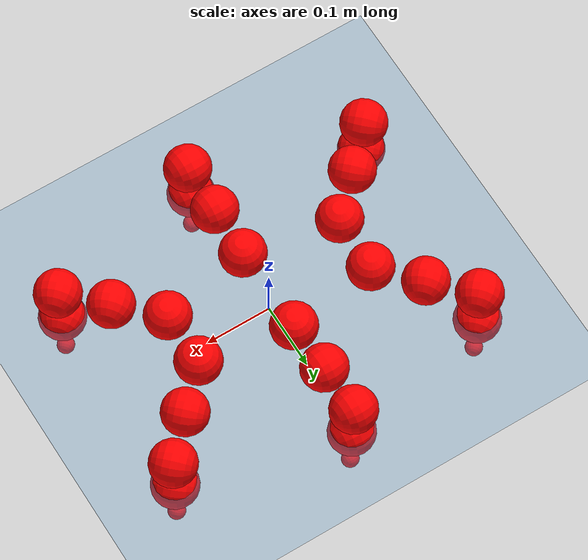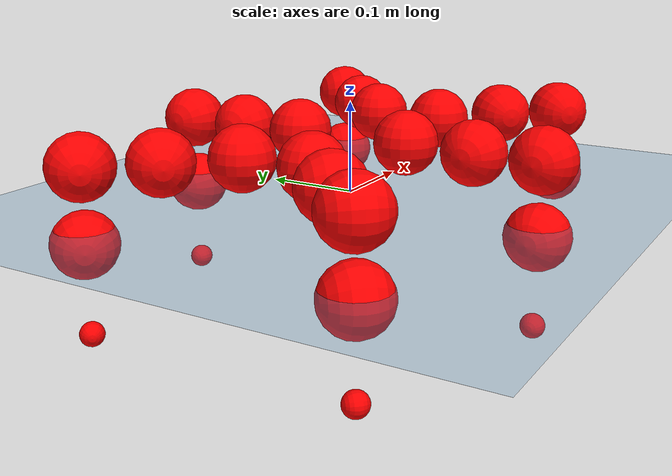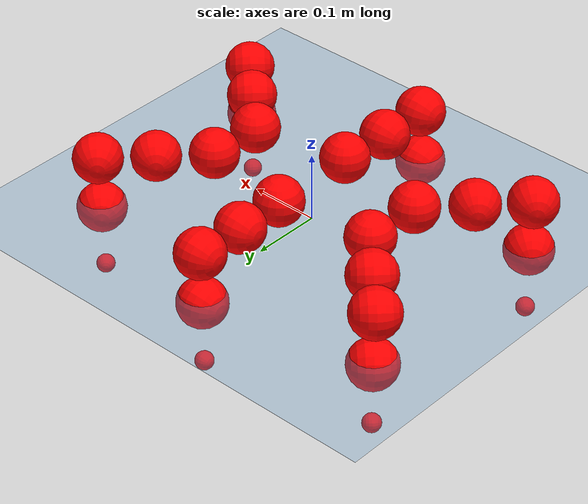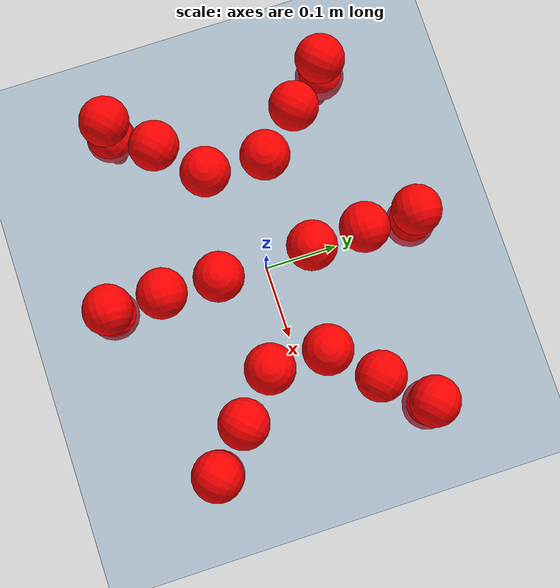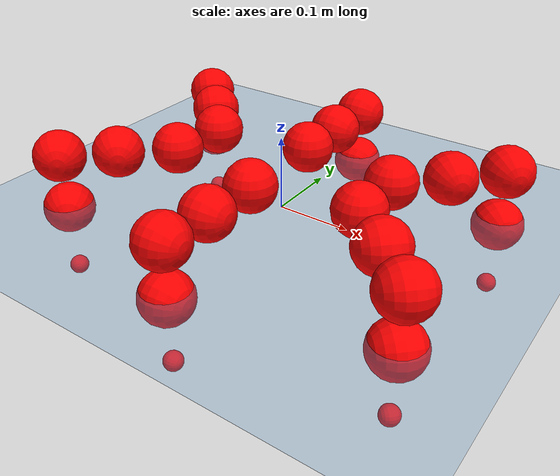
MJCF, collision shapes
<mujoco model="Golem">
  <compiler angle="radian" assetdir="assets" balanceinertia="true" inertiafromgeom="false"/>

  <option timestep="0.005" density="1.2" viscosity="2e-05"/>

  <size nkey="1"/>

  <visual>
    <quality shadowsize="8192"/>
    <map shadowclip="0.5"/>
  </visual>

  <default>
    <default class="/">
      <joint armature="0.01" damping="0.01" frictionloss="0.01"/>
      <geom contype="0" conaffinity="0" group="1" solref="-1000 -80"/>
      <site size="0.01 0.005 0.005" group="5"/>
      <general forcelimited="true" biastype="affine" gainprm="25" biasprm="0 -25 -0.5"/>
      <default class="visual">
        <geom type="mesh" group="2"/>
      </default>
      <default class="collision">
        <geom group="3"/>
      </default>
      <default class="foot">
        <geom size="0.01 0 0" condim="6" group="4" priority="1" solimp="0.015 1 0.01"/>
      </default>
      <default class="reward_collision_sphere">
        <geom group="5" rgba="1 0 0 1"/>
      </default>
    </default>
  </default>

  <asset>
    <texture type="skybox" colorspace="auto" name="//unnamed_texture_0" builtin="gradient" rgb1="0.95 0.95 0.95" rgb2="0.95 0.95 0.95" width="100" height="600"/>
    <texture type="2d" colorspace="auto" name="texplane" builtin="checker" rgb1="0.345 0.575 0.748" rgb2="0.345 0.575 0.748" markrgb="1 1 1" width="512" height="512"/>
    <material name="MatPlane" class="/" texture="texplane" texuniform="true" texrepeat="2 2" specular="0.9"/>
    <mesh name="body" class="/" file="body.stl" scale="0.001 0.001 0.001"/>
    <mesh name="coxa" class="/" file="coxa.stl" scale="0.001 0.001 0.001"/>
    <mesh name="femur" class="/" file="femur.stl" scale="0.001 0.001 0.001"/>
    <mesh name="tibia" class="/" file="tibia.stl" scale="0.001 0.001 0.001"/>
    <mesh name="tarsus" class="/" file="tarsus.stl" scale="0.001 0.001 0.001"/>
  </asset>

  <worldbody>
    <geom name="floor" class="/" size="100 100 0.125" type="plane" group="0" material="MatPlane"/>
    <light name="toplight_shadow" class="/" pos="0 0 5" dir="0.0990148 0.0990148 -0.990148" type="directional" ambient="0.04 0.04 0.04" diffuse="0.55 0.55 0.55" specular="0.12 0.12 0.12"/>
    <light name="toplight_fill" class="/" pos="0 0 5" dir="0.0990148 0.0990148 -0.990148" type="directional" castshadow="false" ambient="0.04 0.04 0.04" diffuse="0.3 0.3 0.3" specular="0.08 0.08 0.08"/>
    <body name="trunk" pos="-0.000269115 -0.000116361 -0.0019537" quat="1 -0.000242973 9.50115e-05 -0.000186495">
      <inertial pos="-8.4917e-05 0.000697923 -0.00497915" quat="0.999991 -0.000189495 -0.00394034 0.00180917" mass="2.46173" diaginertia="0.00559403 0.00174642 0.0104556"/>
      <joint name="//unnamed_joint_0" type="free"/>
      <geom name="//unnamed_geom_1" class="/" pos="0 0 0.0644563" quat="1 0 0 0" type="mesh" rgba="0.9 0.9 0.9 1" mesh="body"/>
      <site name="imu" class="/" pos="0.11895 0.000380833 0.107991" size="0.00865242"/>
      <camera name="track" class="/" pos="0 -1.40439 0" quat="0.707107 0.707107 0 0" mode="trackcom"/>
      <camera name="ego_camera" class="/" pos="0.115232 0 0.100713" quat="-0.5 -0.5 0.5 0.5"/>
      <body name="coxa_RR" pos="-0.159258 -0.0598653 0.0659566" quat="0.383153 -0.000954603 0.00048269 -0.923684">
        <inertial pos="-0.00228105 -5.27208e-05 0.00110322" quat="0.999971 -0.00348951 -0.00675532 0.000576431" mass="0.128081" diaginertia="0.0054982 0.00171603 0.0100614"/>
        <joint name="coxa_joint_RR" class="/" pos="0 0 0" axis="3.40233e-05 -0.00029241 -1" range="-3.1258 3.13274" armature="0.00904129" damping="0.0100929" frictionloss="0.0093196"/>
        <geom name="//unnamed_geom_2" class="/" type="mesh" rgba="0.2 0.2 0.2 1" mesh="coxa"/>
        <geom name="//unnamed_geom_3" class="reward_collision_sphere" size="0.0346097" pos="-0.026592 0 0"/>
        <body name="femur_RR" pos="0.0517372 -0.000286248 0.000786263" quat="0.500208 -0.499929 0.499803 0.50006">
          <inertial pos="-0.000648513 0.000662644 0.00185797" quat="1 0.000169727 0.000279087 8.72093e-05" mass="0.130378" diaginertia="0.00549781 0.00171393 0.0101389"/>
          <joint name="femur_joint_RR" class="/" pos="0 0 0" axis="-0.00644003 -7.96445e-05 -0.999979" stiffness="0.0015978" range="-3.159 3.14465" armature="0.00889012" damping="0.00437485" frictionloss="0.0090922"/>
          <geom name="//unnamed_geom_4" class="/" type="mesh" rgba="0.9 0.9 0.9 1" mesh="femur"/>
          <geom name="//unnamed_geom_5" class="reward_collision_sphere" size="0.0346097"/>
          <body name="tibia_RR" pos="-0.000488416 -0.0757235 0.000645052" quat="1.91942e-06 1 9.88987e-06 -2.61132e-05">
            <inertial pos="0.000615353 0.00183462 -0.00194501" quat="0.999968 -0.000893657 -0.00194102 -0.00775069" mass="0.129497" diaginertia="0.00541008 0.00171772 0.0103775"/>
            <joint name="tibia_joint_RR" class="/" pos="0 0 0" axis="0.000835304 0.00109703 0.999999" range="-3.14068 3.12541" armature="0.008649" damping="0.00101773" frictionloss="0.00875047"/>
            <geom name="//unnamed_geom_6" class="/" type="mesh" rgba="0.2 0.2 0.2 1" mesh="tibia"/>
            <geom name="//unnamed_geom_7" class="reward_collision_sphere" size="0.0346097"/>
            <body name="tarsus_RR" pos="0.0765256 -0.0019898 -0.00176346" quat="1 0.00035112 0.000741485 0.000451989">
              <inertial pos="0.0513398 -0.00173871 -0.000798481" quat="0.499553 0.498274 0.500361 0.501804" mass="0.126274" diaginertia="0.00549497 0.00173142 0.0103576"/>
              <joint name="tarsus_joint_RR" class="/" pos="0 0 0" axis="0.00188248 -0.000817525 0.999998" range="-3.13987 3.12879" armature="0.00855802" damping="0" frictionloss="0.00870312"/>
              <geom name="//unnamed_geom_8" class="/" type="mesh" rgba="0.9 0.9 0.9 1" mesh="tarsus"/>
              <geom name="foot_1" class="foot" size="0.00850481" pos="0.0992768 0 0" quat="0 -0.707107 0 0.707107"/>
              <geom name="//unnamed_geom_10" class="reward_collision_sphere" size="0.0346097"/>
              <geom name="//unnamed_geom_11" class="reward_collision_sphere" size="0.0129786" pos="0.095288 0 0"/>
              <site name="foot_1" class="foot" pos="0.0992768 0 0" quat="0 -0.707107 0 0.707107" size="0.00865242"/>
            </body>
          </body>
        </body>
      </body>
      <body name="coxa_RM" pos="0.0013319 -0.0935534 0.06452" quat="0.707062 -0.000140243 -0.000234114 -0.707152">
        <inertial pos="0.000311751 5.0691e-06 -0.00204964" quat="0.999988 -0.00353805 -0.00123127 -0.0032218" mass="0.128704" diaginertia="0.00535255 0.00165485 0.0101318"/>
        <joint name="coxa_joint_RM" class="/" pos="0 0 0" axis="-8.05599e-05 -6.49178e-05 -1" range="-3.14093 3.13894" armature="0.00891509" damping="0.0117335" frictionloss="0.00871422"/>
        <geom name="//unnamed_geom_12" class="/" type="mesh" rgba="0.2 0.2 0.2 1" mesh="coxa"/>
        <geom name="//unnamed_geom_13" class="reward_collision_sphere" size="0.0346097" pos="-0.026592 0 0"/>
        <body name="femur_RM" pos="0.0520258 -0.00211286 -0.00124662" quat="0.499641 -0.499353 0.500216 0.50079">
          <inertial pos="0.000540422 -0.000409817 4.52192e-05" quat="0.999946 -0.00475513 -0.00746587 0.00542112" mass="0.128155" diaginertia="0.00559599 0.00172524 0.0103261"/>
          <joint name="femur_joint_RM" class="/" pos="0 0 0" axis="-0.00501323 -0.000358197 -0.999987" range="-3.16724 3.16717" armature="0.00959491" damping="0.0203601" frictionloss="0.00850333"/>
          <geom name="//unnamed_geom_14" class="/" type="mesh" rgba="0.9 0.9 0.9 1" mesh="femur"/>
          <geom name="//unnamed_geom_15" class="reward_collision_sphere" size="0.0346097"/>
          <body name="tibia_RM" pos="-0.00189766 -0.0741452 -0.000827254" quat="-6.26253e-05 1 7.03006e-05 4.42773e-05">
            <inertial pos="0.00105095 0.000261388 -0.00167001" quat="0.99998 -0.000770667 0.00172796 -0.0059762" mass="0.124407" diaginertia="0.00531089 0.00167598 0.0104101"/>
            <joint name="tibia_joint_RM" class="/" pos="0 0 0" axis="0.00332479 0.000506985 0.999994" range="-3.16488 3.11072" armature="0.00809271" damping="0" frictionloss="0.00909505"/>
            <geom name="//unnamed_geom_16" class="/" type="mesh" rgba="0.2 0.2 0.2 1" mesh="tibia"/>
            <geom name="//unnamed_geom_17" class="reward_collision_sphere" size="0.0346097"/>
            <body name="tarsus_RM" pos="0.0782506 -0.00109467 0.00283649" quat="1 0.000344436 9.41181e-05 0.000129624">
              <inertial pos="0.0541137 0.000111842 0.00111566" quat="0.502189 0.500135 0.500939 0.496721" mass="0.129382" diaginertia="0.0055037 0.00170376 0.0104325"/>
              <joint name="tarsus_joint_RM" class="/" pos="0 0 0" axis="-0.000480267 -0.000967242 0.999999" range="-3.12876 3.18694" armature="0.00873553" damping="0" frictionloss="0.00881306"/>
              <geom name="//unnamed_geom_18" class="/" type="mesh" rgba="0.9 0.9 0.9 1" mesh="tarsus"/>
              <geom name="foot_2" class="foot" size="0.00812259" pos="0.0992768 0 0" quat="0 -0.707107 0 0.707107"/>
              <geom name="//unnamed_geom_20" class="reward_collision_sphere" size="0.0346097"/>
              <geom name="//unnamed_geom_21" class="reward_collision_sphere" size="0.0129786" pos="0.095288 0 0"/>
              <site name="foot_2" class="foot" pos="0.0992768 0 0" quat="0 -0.707107 0 0.707107" size="0.00865242"/>
            </body>
          </body>
        </body>
      </body>
      <body name="coxa_RF" pos="0.157543 -0.0587366 0.064111" quat="0.924171 -0.000385399 0.000498419 -0.381978">
        <inertial pos="0.00196266 -0.00166003 0.000706131" quat="0.999994 -0.00035228 -0.00322434 0.00108903" mass="0.12954" diaginertia="0.00557717 0.00169577 0.0104255"/>
        <joint name="coxa_joint_RF" class="/" pos="0 0 0" axis="0.00443874 -0.000783671 -0.99999" stiffness="0.000474926" range="-3.14216 3.14186" armature="0.00877673" damping="0" frictionloss="0.00905807"/>
        <geom name="//unnamed_geom_22" class="/" type="mesh" rgba="0.2 0.2 0.2 1" mesh="coxa"/>
        <geom name="//unnamed_geom_23" class="reward_collision_sphere" size="0.0346097" pos="-0.026592 0 0"/>
        <body name="femur_RF" pos="0.0529846 0.00216317 0.00181032" quat="0.500108 -0.500819 0.499014 0.500058">
          <inertial pos="0.000245805 -0.000575571 0.000882857" quat="1 -0.00079556 -7.72538e-06 -0.000255352" mass="0.130644" diaginertia="0.0055141 0.00172761 0.0103836"/>
          <joint name="femur_joint_RF" class="/" pos="0 0 0" axis="0.00324742 -0.0041153 -0.999986" range="-3.15019 3.13267" armature="0.00859767" damping="0.0123809" frictionloss="0.00856876"/>
          <geom name="//unnamed_geom_24" class="/" type="mesh" rgba="0.9 0.9 0.9 1" mesh="femur"/>
          <geom name="//unnamed_geom_25" class="reward_collision_sphere" size="0.0346097"/>
          <body name="tibia_RF" pos="0.000695694 -0.0754348 0.000417214" quat="-0.000100484 1 3.95433e-05 0.000267536">
            <inertial pos="-0.000783965 -0.000995918 -0.000331417" quat="0.999991 0.00401255 -0.00163524 -0.000187883" mass="0.124493" diaginertia="0.00530901 0.00165084 0.0102956"/>
            <joint name="tibia_joint_RF" class="/" pos="0 0 0" axis="-0.00205148 0.00159432 0.999997" range="-3.12891 3.11023" armature="0.00865854" damping="0" frictionloss="0.00862382"/>
            <geom name="//unnamed_geom_26" class="/" type="mesh" rgba="0.2 0.2 0.2 1" mesh="tibia"/>
            <geom name="//unnamed_geom_27" class="reward_collision_sphere" size="0.0346097"/>
            <body name="tarsus_RF" pos="0.0768728 -0.00230263 0.00115407" quat="1 0.000193131 -2.4112e-05 0.000120182">
              <inertial pos="0.0526309 0.00064992 -0.000799377" quat="0.499793 0.499758 0.500123 0.500326" mass="0.131" diaginertia="0.00544606 0.00175652 0.0104634"/>
              <joint name="tarsus_joint_RF" class="/" pos="0 0 0" axis="0.00149327 -0.000308455 0.999999" stiffness="0.000462551" range="-3.13873 3.15063" armature="0.00842741" damping="0" frictionloss="0.0086008"/>
              <geom name="//unnamed_geom_28" class="/" type="mesh" rgba="0.9 0.9 0.9 1" mesh="tarsus"/>
              <geom name="foot_3" class="foot" size="0.00853991" pos="0.0992768 0 0" quat="0 -0.707107 0 0.707107"/>
              <geom name="//unnamed_geom_30" class="reward_collision_sphere" size="0.0346097"/>
              <geom name="//unnamed_geom_31" class="reward_collision_sphere" size="0.0129786" pos="0.095288 0 0"/>
              <site name="foot_3" class="foot" pos="0.0992768 0 0" quat="0 -0.707107 0 0.707107" size="0.00865242"/>
            </body>
          </body>
        </body>
      </body>
      <body name="coxa_LR" pos="-0.157206 0.0615161 0.063325" quat="0.382566 6.76577e-05 -0.00039563 0.923928">
        <inertial pos="-6.07186e-05 0.000843252 -0.000521342" quat="0.999995 -0.00226112 0.00209788 0.000239399" mass="0.127358" diaginertia="0.00531664 0.0016828 0.0100478"/>
        <joint name="coxa_joint_LR" class="/" pos="0 0 0" axis="0.000775996 0.000173781 -1" range="-3.13341 3.13941" armature="0.00826856" damping="0.0134015" frictionloss="0.0090794"/>
        <geom name="//unnamed_geom_32" class="/" type="mesh" rgba="0.2 0.2 0.2 1" mesh="coxa"/>
        <geom name="//unnamed_geom_33" class="reward_collision_sphere" size="0.0346097" pos="-0.026592 0 0"/>
        <body name="femur_LR" pos="0.0524749 -0.00354729 -0.000445639" quat="0.49981 -0.500018 0.500001 0.500171">
          <inertial pos="-0.000809036 0.000623781 -0.00239821" quat="0.999997 -0.00177094 -0.00127786 -0.000647006" mass="0.126013" diaginertia="0.00534632 0.0016709 0.010154"/>
          <joint name="femur_joint_LR" class="/" pos="0 0 0" axis="-0.00845192 0.00754343 0.999936" stiffness="0.00109285" range="-3.14031 3.14005" armature="0.00869054" damping="0.00688055" frictionloss="0.00857206"/>
          <geom name="//unnamed_geom_34" class="/" type="mesh" rgba="0.9 0.9 0.9 1" mesh="femur"/>
          <geom name="//unnamed_geom_35" class="reward_collision_sphere" size="0.0346097"/>
          <body name="tibia_LR" pos="-0.000125173 -0.0761015 -0.00167202" quat="-1.12548e-06 1 -0.00018796 0.000170925">
            <inertial pos="-0.000629404 0.00178001 -0.000578064" quat="0.999994 0.00291058 0.000633948 -0.00162796" mass="0.129052" diaginertia="0.00533331 0.00171106 0.0105317"/>
            <joint name="tibia_joint_LR" class="/" pos="0 0 0" axis="0.00522838 -0.00972472 -0.999939" range="-3.11525 3.09023" armature="0.00969561" damping="0" frictionloss="0.00884179"/>
            <geom name="//unnamed_geom_36" class="/" type="mesh" rgba="0.2 0.2 0.2 1" mesh="tibia"/>
            <geom name="//unnamed_geom_37" class="reward_collision_sphere" size="0.0346097"/>
            <body name="tarsus_LR" pos="0.0789053 0.00117009 0.00198724" quat="1 0.000119299 -0.000241016 -0.000359942">
              <inertial pos="0.055784 0.000264878 -0.00228527" quat="0.49988 0.500307 0.50004 0.499773" mass="0.1303" diaginertia="0.00549855 0.00171431 0.0103453"/>
              <joint name="tarsus_joint_LR" class="/" pos="0 0 0" axis="-0.000650123 -0.00099434 -0.999999" range="-3.13934 3.14458" armature="0.00831257" damping="0.00830067" frictionloss="0.00869364"/>
              <geom name="//unnamed_geom_38" class="/" type="mesh" rgba="0.9 0.9 0.9 1" mesh="tarsus"/>
              <geom name="foot_4" class="foot" size="0.00854605" pos="0.0992768 0 0" quat="0.707107 0 -0.707107 0"/>
              <geom name="//unnamed_geom_40" class="reward_collision_sphere" size="0.0346097"/>
              <geom name="//unnamed_geom_41" class="reward_collision_sphere" size="0.0129786" pos="0.095288 0 0"/>
              <site name="foot_4" class="foot" pos="0.0992768 0 0" quat="0.707107 0 -0.707107 0" size="0.00865242"/>
            </body>
          </body>
        </body>
      </body>
      <body name="coxa_LM" pos="-0.000576997 0.0907084 0.0646609" quat="0.707092 0.00014861 -0.000302017 0.707121">
        <inertial pos="0.000332815 -0.00187692 0.00255368" quat="0.999995 0.00285183 0.0011336 -0.00023816" mass="0.130555" diaginertia="0.00558515 0.00172189 0.0104908"/>
        <joint name="coxa_joint_LM" class="/" pos="0 0 0" axis="0.00356798 -0.00591801 -0.999976" range="-3.14836 3.15873" armature="0.00771772" damping="0.00579077" frictionloss="0.00861507"/>
        <geom name="//unnamed_geom_42" class="/" type="mesh" rgba="0.2 0.2 0.2 1" mesh="coxa"/>
        <geom name="//unnamed_geom_43" class="reward_collision_sphere" size="0.0346097" pos="-0.026592 0 0"/>
        <body name="femur_LM" pos="0.0483516 0.00233364 -0.00141439" quat="0.499931 -0.500079 0.500033 0.499957">
          <inertial pos="-0.00227413 -0.000209657 -0.000285231" quat="0.999997 -0.00132098 -3.54379e-05 -0.00207695" mass="0.125013" diaginertia="0.00540392 0.00165977 0.0100036"/>
          <joint name="femur_joint_LM" class="/" pos="0 0 0" axis="0.00275817 -0.0109417 0.999936" range="-3.14123 3.13776" armature="0.00874624" damping="0.00784892" frictionloss="0.00912206"/>
          <geom name="//unnamed_geom_44" class="/" type="mesh" rgba="0.9 0.9 0.9 1" mesh="femur"/>
          <geom name="//unnamed_geom_45" class="reward_collision_sphere" size="0.0346097"/>
          <body name="tibia_LM" pos="-0.000484922 -0.0737464 0.000707516" quat="-0.000124347 1 3.06385e-05 -0.000471331">
            <inertial pos="-0.000765544 0.000233102 0.000836581" quat="0.999985 0.00291563 -0.0043617 -0.00153787" mass="0.125658" diaginertia="0.00541007 0.00169552 0.010143"/>
            <joint name="tibia_joint_LM" class="/" pos="0 0 0" axis="-0.00395439 0.00062251 -0.999992" range="-3.13276 3.17291" armature="0.00834765" damping="0.00506647" frictionloss="0.0083097"/>
            <geom name="//unnamed_geom_46" class="/" type="mesh" rgba="0.2 0.2 0.2 1" mesh="tibia"/>
            <geom name="//unnamed_geom_47" class="reward_collision_sphere" size="0.0346097"/>
            <body name="tarsus_LM" pos="0.0785542 -0.00126017 0.000262321" quat="1 2.61146e-05 -1.01229e-05 5.42371e-06">
              <inertial pos="0.0552995 0.00120971 0.00103236" quat="0.500142 0.499971 0.499923 0.499965" mass="0.12898" diaginertia="0.00554438 0.00172625 0.0103884"/>
              <joint name="tarsus_joint_LM" class="/" pos="0 0 0" axis="-3.2679e-05 6.67994e-05 -1" range="-3.14864 3.13499" armature="0.00854421" damping="0" frictionloss="0.0090461"/>
              <geom name="//unnamed_geom_48" class="/" type="mesh" rgba="0.9 0.9 0.9 1" mesh="tarsus"/>
              <geom name="foot_5" class="foot" size="0.0087854" pos="0.0992768 0 0" quat="0.707107 0 -0.707107 0"/>
              <geom name="//unnamed_geom_50" class="reward_collision_sphere" size="0.0346097"/>
              <geom name="//unnamed_geom_51" class="reward_collision_sphere" size="0.0129786" pos="0.095288 0 0"/>
              <site name="foot_5" class="foot" pos="0.0992768 0 0" quat="0.707107 0 -0.707107 0" size="0.00865242"/>
            </body>
          </body>
        </body>
      </body>
      <body name="coxa_LF" pos="0.156832 0.0592016 0.0640084" quat="0.923783 -0.000127879 0.000249619 0.382917">
        <inertial pos="0.00122561 -0.000578102 -0.000847864" quat="0.999951 -0.00484336 -0.0041726 0.00761463" mass="0.129998" diaginertia="0.00563424 0.00168995 0.0103614"/>
        <joint name="coxa_joint_LF" class="/" pos="0 0 0" axis="-0.00297156 -0.00152803 -0.999994" range="-3.13735 3.10449" armature="0.0088199" damping="0.0105614" frictionloss="0.00841637"/>
        <geom name="//unnamed_geom_52" class="/" type="mesh" rgba="0.2 0.2 0.2 1" mesh="coxa"/>
        <geom name="//unnamed_geom_53" class="reward_collision_sphere" size="0.0346097" pos="-0.026592 0 0"/>
        <body name="femur_LF" pos="0.0510765 0.000560542 -0.00138543" quat="0.499955 -0.499922 0.499691 0.500432">
          <inertial pos="-0.00139552 0.000429435 0.000137172" quat="0.99999 0.00111391 -0.00424511 0.00123026" mass="0.131293" diaginertia="0.0053853 0.00172016 0.0103567"/>
          <joint name="femur_joint_LF" class="/" pos="0 0 0" axis="0.0108921 -0.00062001 0.99994" range="-3.17528 3.14891" armature="0.00857642" damping="0" frictionloss="0.00868602"/>
          <geom name="//unnamed_geom_54" class="/" type="mesh" rgba="0.9 0.9 0.9 1" mesh="femur"/>
          <geom name="//unnamed_geom_55" class="reward_collision_sphere" size="0.0346097"/>
          <body name="tibia_LF" pos="-0.000826078 -0.0771046 0.00253465" quat="0.000136753 1 0.00025617 -0.000216738">
            <inertial pos="-0.00132912 0.000175031 -0.000171388" quat="0.999927 0.00883005 0.00791153 0.00215924" mass="0.133199" diaginertia="0.00545338 0.00171696 0.0105077"/>
            <joint name="tibia_joint_LF" class="/" pos="0 0 0" axis="0.000952561 -0.000323864 -0.999999" range="-3.14128 3.123" armature="0.00871669" damping="0.00247392" frictionloss="0.00872555"/>
            <geom name="//unnamed_geom_56" class="/" type="mesh" rgba="0.2 0.2 0.2 1" mesh="tibia"/>
            <geom name="//unnamed_geom_57" class="reward_collision_sphere" size="0.0346097"/>
            <body name="tarsus_LF" pos="0.0785961 -0.00132609 -0.000297421" quat="1 -8.41829e-05 8.91997e-05 1.12222e-05">
              <inertial pos="0.0536071 0.00127382 -0.00107714" quat="0.499332 0.497305 0.500842 0.502505" mass="0.123539" diaginertia="0.0053409 0.00166073 0.0100189"/>
              <joint name="tarsus_joint_LF" class="/" pos="0 0 0" axis="-0.0023105 0.000860795 -0.999997" range="-3.12179 3.12912" armature="0.008904" damping="0.0184444" frictionloss="0.00870548"/>
              <geom name="//unnamed_geom_58" class="/" type="mesh" rgba="0.9 0.9 0.9 1" mesh="tarsus"/>
              <geom name="foot_6" class="foot" size="0.00880014" pos="0.0992768 0 0" quat="0.707107 0 -0.707107 0"/>
              <geom name="//unnamed_geom_60" class="reward_collision_sphere" size="0.0346097"/>
              <geom name="//unnamed_geom_61" class="reward_collision_sphere" size="0.0129786" pos="0.095288 0 0"/>
              <site name="foot_6" class="foot" pos="0.0992768 0 0" quat="0.707107 0 -0.707107 0" size="0.00865242"/>
            </body>
          </body>
        </body>
      </body>
    </body>
  </worldbody>

  <contact>
    <pair class="/" geom1="floor" geom2="foot_1" name="//unnamed_contact_0"/>
    <pair class="/" geom1="floor" geom2="foot_2" name="//unnamed_contact_1"/>
    <pair class="/" geom1="floor" geom2="foot_3" name="//unnamed_contact_2"/>
    <pair class="/" geom1="floor" geom2="foot_4" name="//unnamed_contact_3"/>
    <pair class="/" geom1="floor" geom2="foot_5" name="//unnamed_contact_4"/>
    <pair class="/" geom1="floor" geom2="foot_6" name="//unnamed_contact_5"/>
  </contact>

  <actuator>
    <general name="coxa_joint_RR" class="/" joint="coxa_joint_RR" forcerange="-6.18993 6.18993" gainprm="21.1786" biasprm="0 -21.1786 -0.455237"/>
    <general name="femur_joint_RR" class="/" joint="femur_joint_RR" forcerange="-6.35202 6.35202" gainprm="21.1786" biasprm="0 -21.1786 -0.455237"/>
    <general name="tibia_joint_RR" class="/" joint="tibia_joint_RR" forcerange="-5.94686 5.94686" gainprm="21.1786" biasprm="0 -21.1786 -0.455237"/>
    <general name="tarsus_joint_RR" class="/" joint="tarsus_joint_RR" forcerange="-6.09236 6.09236" gainprm="21.1786" biasprm="0 -21.1786 -0.455237"/>
    <general name="coxa_joint_RM" class="/" joint="coxa_joint_RM" forcerange="-6.89017 6.89017" gainprm="21.1786" biasprm="0 -21.1786 -0.455237"/>
    <general name="femur_joint_RM" class="/" joint="femur_joint_RM" forcerange="-6.20681 6.20681" gainprm="21.1786" biasprm="0 -21.1786 -0.455237"/>
    <general name="tibia_joint_RM" class="/" joint="tibia_joint_RM" forcerange="-6.10423 6.10423" gainprm="21.1786" biasprm="0 -21.1786 -0.455237"/>
    <general name="tarsus_joint_RM" class="/" joint="tarsus_joint_RM" forcerange="-5.9408 5.9408" gainprm="21.1786" biasprm="0 -21.1786 -0.455237"/>
    <general name="coxa_joint_RF" class="/" joint="coxa_joint_RF" forcerange="-6.61724 6.61724" gainprm="21.1786" biasprm="0 -21.1786 -0.455237"/>
    <general name="femur_joint_RF" class="/" joint="femur_joint_RF" forcerange="-6.33911 6.33911" gainprm="21.1786" biasprm="0 -21.1786 -0.455237"/>
    <general name="tibia_joint_RF" class="/" joint="tibia_joint_RF" forcerange="-6.35483 6.35483" gainprm="21.1786" biasprm="0 -21.1786 -0.455237"/>
    <general name="tarsus_joint_RF" class="/" joint="tarsus_joint_RF" forcerange="-6.33688 6.33688" gainprm="21.1786" biasprm="0 -21.1786 -0.455237"/>
    <general name="coxa_joint_LR" class="/" joint="coxa_joint_LR" forcerange="-6.77797 6.77797" gainprm="21.1786" biasprm="0 -21.1786 -0.455237"/>
    <general name="femur_joint_LR" class="/" joint="femur_joint_LR" forcerange="-6.32268 6.32268" gainprm="21.1786" biasprm="0 -21.1786 -0.455237"/>
    <general name="tibia_joint_LR" class="/" joint="tibia_joint_LR" forcerange="-6.50662 6.50662" gainprm="21.1786" biasprm="0 -21.1786 -0.455237"/>
    <general name="tarsus_joint_LR" class="/" joint="tarsus_joint_LR" forcerange="-6.82076 6.82076" gainprm="21.1786" biasprm="0 -21.1786 -0.455237"/>
    <general name="coxa_joint_LM" class="/" joint="coxa_joint_LM" forcerange="-5.96948 5.96948" gainprm="21.1786" biasprm="0 -21.1786 -0.455237"/>
    <general name="femur_joint_LM" class="/" joint="femur_joint_LM" forcerange="-6.07663 6.07663" gainprm="21.1786" biasprm="0 -21.1786 -0.455237"/>
    <general name="tibia_joint_LM" class="/" joint="tibia_joint_LM" forcerange="-6.74523 6.74523" gainprm="21.1786" biasprm="0 -21.1786 -0.455237"/>
    <general name="tarsus_joint_LM" class="/" joint="tarsus_joint_LM" forcerange="-6.87974 6.87974" gainprm="21.1786" biasprm="0 -21.1786 -0.455237"/>
    <general name="coxa_joint_LF" class="/" joint="coxa_joint_LF" forcerange="-6.15336 6.15336" gainprm="21.1786" biasprm="0 -21.1786 -0.455237"/>
    <general name="femur_joint_LF" class="/" joint="femur_joint_LF" forcerange="-6.18749 6.18749" gainprm="21.1786" biasprm="0 -21.1786 -0.455237"/>
    <general name="tibia_joint_LF" class="/" joint="tibia_joint_LF" forcerange="-6.55872 6.55872" gainprm="21.1786" biasprm="0 -21.1786 -0.455237"/>
    <general name="tarsus_joint_LF" class="/" joint="tarsus_joint_LF" forcerange="-6.47295 6.47295" gainprm="21.1786" biasprm="0 -21.1786 -0.455237"/>
  </actuator>

  <sensor>
    <gyro site="imu" name="imu_angular_velocity"/>
    <velocimeter site="imu" name="imu_linear_velocity"/>
    <framelinvel objtype="site" objname="foot_1" name="foot_1_global_linear_velocity"/>
    <framelinvel objtype="site" objname="foot_2" name="foot_2_global_linear_velocity"/>
    <framelinvel objtype="site" objname="foot_3" name="foot_3_global_linear_velocity"/>
    <framelinvel objtype="site" objname="foot_4" name="foot_4_global_linear_velocity"/>
    <framelinvel objtype="site" objname="foot_5" name="foot_5_global_linear_velocity"/>
    <framelinvel objtype="site" objname="foot_6" name="foot_6_global_linear_velocity"/>
  </sensor>

  <keyframe>
    <key name="home" qpos="0 0 0.1457 1 0 0 0 0 0 0 0 0 0 0 0 0 0 0 0 0 0 0 0 0 0 0 0 0 0 0 0"/>
  </keyframe>
</mujoco>
